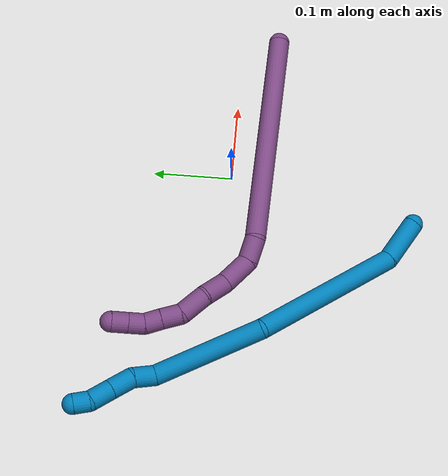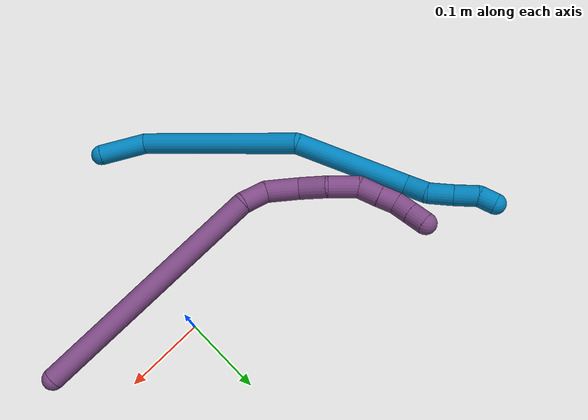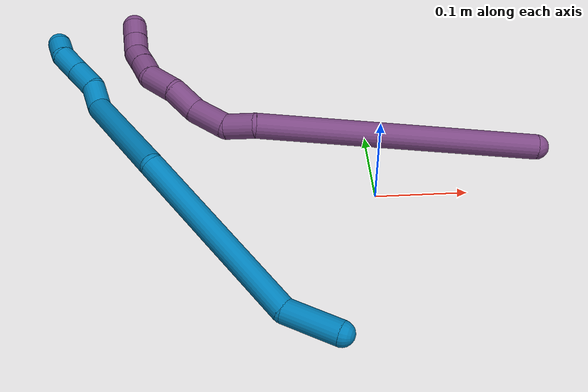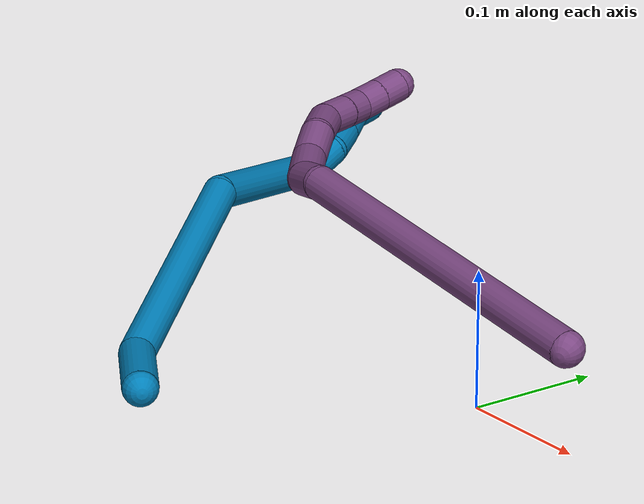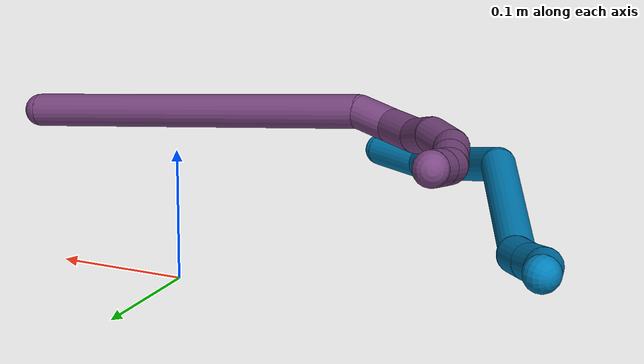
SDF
<sdf version="1.7">
 <world name="default">
  <model name="9">
   <static>0</static>
   <link name="9">
    <collision name="collision-cylinder-e_1_1_4">
     <pose>-0.002328 0.001335 -0.02846 -3.09473 -0.081517 2.09838</pose>
     <geometry><cylinder><radius>0.0125</radius><length>0.057173</length></cylinder></geometry>
     <surface>
      <friction><ode><mu>1.16</mu><mu2>1.16</mu2><slip1>0</slip1><slip2>0</slip2></ode></friction>
      <contact><ode><kp>1e+06</kp><kd>1</kd><max_vel>0</max_vel><min_depth>0.001</min_depth></ode></contact>
     </surface>
    </collision>
    <visual name="visual-cylinder-e_1_1_4">
     <pose>-0.002328 0.001335 -0.02846 -3.09473 -0.081517 2.09838</pose>
     <geometry><cylinder><radius>0.0125</radius><length>0.057173</length></cylinder></geometry>
     <material><ambient>0 0.490196 0.709804 1</ambient></material>
    </visual>
    <collision name="collision-cylinder-e_2_4_5">
     <pose>-0.042164 0.035231 -0.141903 -2.77569 -0.390936 1.63853</pose>
     <geometry><cylinder><radius>0.0125</radius><length>0.196866</length></cylinder></geometry>
     <surface>
      <friction><ode><mu>1.16</mu><mu2>1.16</mu2><slip1>0</slip1><slip2>0</slip2></ode></friction>
      <contact><ode><kp>1e+06</kp><kd>1</kd><max_vel>0</max_vel><min_depth>0.001</min_depth></ode></contact>
     </surface>
    </collision>
    <visual name="visual-cylinder-e_2_4_5">
     <pose>-0.042164 0.035231 -0.141903 -2.77569 -0.390936 1.63853</pose>
     <geometry><cylinder><radius>0.0125</radius><length>0.196866</length></cylinder></geometry>
     <material><ambient>0 0.490196 0.709804 1</ambient></material>
    </visual>
    <collision name="collision-cylinder-e_3_5_6">
     <pose>-0.08006 0.110308 -0.281617 -2.48116 -0.0056 0.016337</pose>
     <geometry><cylinder><radius>0.0125</radius><length>0.138613</length></cylinder></geometry>
     <surface>
      <friction><ode><mu>1.16</mu><mu2>1.16</mu2><slip1>0</slip1><slip2>0</slip2></ode></friction>
      <contact><ode><kp>1e+06</kp><kd>1</kd><max_vel>0</max_vel><min_depth>0.001</min_depth></ode></contact>
     </surface>
    </collision>
    <visual name="visual-cylinder-e_3_5_6">
     <pose>-0.08006 0.110308 -0.281617 -2.48116 -0.0056 0.016337</pose>
     <geometry><cylinder><radius>0.0125</radius><length>0.138613</length></cylinder></geometry>
     <material><ambient>0 0.490196 0.709804 1</ambient></material>
    </visual>
    <collision name="collision-cylinder-e_4_6_7">
     <pose>-0.087316 0.161517 -0.345304 -2.37108 -0.503039 1.12961</pose>
     <geometry><cylinder><radius>0.0125</radius><length>0.02849</length></cylinder></geometry>
     <surface>
      <friction><ode><mu>1.16</mu><mu2>1.16</mu2><slip1>0</slip1><slip2>0</slip2></ode></friction>
      <contact><ode><kp>1e+06</kp><kd>1</kd><max_vel>0</max_vel><min_depth>0.001</min_depth></ode></contact>
     </surface>
    </collision>
    <visual name="visual-cylinder-e_4_6_7">
     <pose>-0.087316 0.161517 -0.345304 -2.37108 -0.503039 1.12961</pose>
     <geometry><cylinder><radius>0.0125</radius><length>0.02849</length></cylinder></geometry>
     <material><ambient>0 0.490196 0.709804 1</ambient></material>
    </visual>
    <collision name="collision-cylinder-e_5_7_8">
     <pose>-0.09849 0.176034 -0.367404 -2.72448 -0.291055 1.21139</pose>
     <geometry><cylinder><radius>0.0125</radius><length>0.030017</length></cylinder></geometry>
     <surface>
      <friction><ode><mu>1.16</mu><mu2>1.16</mu2><slip1>0</slip1><slip2>0</slip2></ode></friction>
      <contact><ode><kp>1e+06</kp><kd>1</kd><max_vel>0</max_vel><min_depth>0.001</min_depth></ode></contact>
     </surface>
    </collision>
    <visual name="visual-cylinder-e_5_7_8">
     <pose>-0.09849 0.176034 -0.367404 -2.72448 -0.291055 1.21139</pose>
     <geometry><cylinder><radius>0.0125</radius><length>0.030017</length></cylinder></geometry>
     <material><ambient>0 0.490196 0.709804 1</ambient></material>
    </visual>
    <collision name="collision-cylinder-e_6_8_9">
     <pose>-0.10758 0.18687 -0.393052 -2.76039 -0.341239 1.45784</pose>
     <geometry><cylinder><radius>0.0125</radius><length>0.028587</length></cylinder></geometry>
     <surface>
      <friction><ode><mu>1.16</mu><mu2>1.16</mu2><slip1>0</slip1><slip2>0</slip2></ode></friction>
      <contact><ode><kp>1e+06</kp><kd>1</kd><max_vel>0</max_vel><min_depth>0.001</min_depth></ode></contact>
     </surface>
    </collision>
    <visual name="visual-cylinder-e_6_8_9">
     <pose>-0.10758 0.18687 -0.393052 -2.76039 -0.341239 1.45784</pose>
     <geometry><cylinder><radius>0.0125</radius><length>0.028587</length></cylinder></geometry>
     <material><ambient>0 0.490196 0.709804 1</ambient></material>
    </visual>
    <collision name="collision-cylinder-e_7_9_2">
     <pose>-0.115282 0.19891 -0.412234 -2.33068 -0.292311 0.660749</pose>
     <geometry><cylinder><radius>0.0125</radius><length>0.020254</length></cylinder></geometry>
     <surface>
      <friction><ode><mu>1.16</mu><mu2>1.16</mu2><slip1>0</slip1><slip2>0</slip2></ode></friction>
      <contact><ode><kp>1e+06</kp><kd>1</kd><max_vel>0</max_vel><min_depth>0.001</min_depth></ode></contact>
     </surface>
    </collision>
    <visual name="visual-cylinder-e_7_9_2">
     <pose>-0.115282 0.19891 -0.412234 -2.33068 -0.292311 0.660749</pose>
     <geometry><cylinder><radius>0.0125</radius><length>0.020254</length></cylinder></geometry>
     <material><ambient>0 0.490196 0.709804 1</ambient></material>
    </visual>
    <collision name="collision-sphere-2">
     <pose>-0.1182 0.20594 -0.418914 0 -0 0</pose>
     <geometry><sphere><radius>0.0125</radius></sphere></geometry>
     <surface>
      <friction><ode><mu>1.16</mu><mu2>1.16</mu2><slip1>0</slip1><slip2>0</slip2></ode></friction>
      <contact><ode><kp>1e+06</kp><kd>1</kd><max_vel>0</max_vel><min_depth>0.001</min_depth></ode></contact>
     </surface>
    </collision>
    <visual name="visual-sphere-2">
     <pose>-0.1182 0.20594 -0.418914 0 -0 0</pose>
     <geometry><sphere><radius>0.0125</radius></sphere></geometry>
     <material><ambient>0 0.490196 0.709804 1</ambient></material>
    </visual>
    <collision name="collision-sphere-9">
     <pose>-0.112364 0.191881 -0.405554 0 -0 0</pose>
     <geometry><sphere><radius>0.0125</radius></sphere></geometry>
     <surface>
      <friction><ode><mu>1.16</mu><mu2>1.16</mu2><slip1>0</slip1><slip2>0</slip2></ode></friction>
      <contact><ode><kp>1e+06</kp><kd>1</kd><max_vel>0</max_vel><min_depth>0.001</min_depth></ode></contact>
     </surface>
    </collision>
    <visual name="visual-sphere-9">
     <pose>-0.112364 0.191881 -0.405554 0 -0 0</pose>
     <geometry><sphere><radius>0.0125</radius></sphere></geometry>
     <material><ambient>0 0.490196 0.709804 1</ambient></material>
    </visual>
    <collision name="collision-sphere-4">
     <pose>-0.004655 0.00267 -0.056921 0 -0 0</pose>
     <geometry><sphere><radius>0.0125</radius></sphere></geometry>
     <surface>
      <friction><ode><mu>1.16</mu><mu2>1.16</mu2><slip1>0</slip1><slip2>0</slip2></ode></friction>
      <contact><ode><kp>1e+06</kp><kd>1</kd><max_vel>0</max_vel><min_depth>0.001</min_depth></ode></contact>
     </surface>
    </collision>
    <visual name="visual-sphere-4">
     <pose>-0.004655 0.00267 -0.056921 0 -0 0</pose>
     <geometry><sphere><radius>0.0125</radius></sphere></geometry>
     <material><ambient>0 0.490196 0.709804 1</ambient></material>
    </visual>
    <collision name="collision-sphere-1">
     <geometry><sphere><radius>0.0125</radius></sphere></geometry>
     <surface>
      <friction><ode><mu>1.16</mu><mu2>1.16</mu2><slip1>0</slip1><slip2>0</slip2></ode></friction>
      <contact><ode><kp>1e+06</kp><kd>1</kd><max_vel>0</max_vel><min_depth>0.001</min_depth></ode></contact>
     </surface>
    </collision>
    <visual name="visual-sphere-1">
     <geometry><sphere><radius>0.0125</radius></sphere></geometry>
     <material><ambient>0 0.490196 0.709804 1</ambient></material>
    </visual>
    <collision name="collision-sphere-8">
     <pose>-0.102797 0.181858 -0.380549 0 -0 0</pose>
     <geometry><sphere><radius>0.0125</radius></sphere></geometry>
     <surface>
      <friction><ode><mu>1.16</mu><mu2>1.16</mu2><slip1>0</slip1><slip2>0</slip2></ode></friction>
      <contact><ode><kp>1e+06</kp><kd>1</kd><max_vel>0</max_vel><min_depth>0.001</min_depth></ode></contact>
     </surface>
    </collision>
    <visual name="visual-sphere-8">
     <pose>-0.102797 0.181858 -0.380549 0 -0 0</pose>
     <geometry><sphere><radius>0.0125</radius></sphere></geometry>
     <material><ambient>0 0.490196 0.709804 1</ambient></material>
    </visual>
    <collision name="collision-sphere-5">
     <pose>-0.079672 0.067792 -0.226885 0 -0 0</pose>
     <geometry><sphere><radius>0.0125</radius></sphere></geometry>
     <surface>
      <friction><ode><mu>1.16</mu><mu2>1.16</mu2><slip1>0</slip1><slip2>0</slip2></ode></friction>
      <contact><ode><kp>1e+06</kp><kd>1</kd><max_vel>0</max_vel><min_depth>0.001</min_depth></ode></contact>
     </surface>
    </collision>
    <visual name="visual-sphere-5">
     <pose>-0.079672 0.067792 -0.226885 0 -0 0</pose>
     <geometry><sphere><radius>0.0125</radius></sphere></geometry>
     <material><ambient>0 0.490196 0.709804 1</ambient></material>
    </visual>
    <collision name="collision-sphere-6">
     <pose>-0.080448 0.152824 -0.336349 0 -0 0</pose>
     <geometry><sphere><radius>0.0125</radius></sphere></geometry>
     <surface>
      <friction><ode><mu>1.16</mu><mu2>1.16</mu2><slip1>0</slip1><slip2>0</slip2></ode></friction>
      <contact><ode><kp>1e+06</kp><kd>1</kd><max_vel>0</max_vel><min_depth>0.001</min_depth></ode></contact>
     </surface>
    </collision>
    <visual name="visual-sphere-6">
     <pose>-0.080448 0.152824 -0.336349 0 -0 0</pose>
     <geometry><sphere><radius>0.0125</radius></sphere></geometry>
     <material><ambient>0 0.490196 0.709804 1</ambient></material>
    </visual>
    <collision name="collision-sphere-7">
     <pose>-0.094183 0.170209 -0.35426 0 -0 0</pose>
     <geometry><sphere><radius>0.0125</radius></sphere></geometry>
     <surface>
      <friction><ode><mu>1.16</mu><mu2>1.16</mu2><slip1>0</slip1><slip2>0</slip2></ode></friction>
      <contact><ode><kp>1e+06</kp><kd>1</kd><max_vel>0</max_vel><min_depth>0.001</min_depth></ode></contact>
     </surface>
    </collision>
    <visual name="visual-sphere-7">
     <pose>-0.094183 0.170209 -0.35426 0 -0 0</pose>
     <geometry><sphere><radius>0.0125</radius></sphere></geometry>
     <material><ambient>0 0.490196 0.709804 1</ambient></material>
    </visual>
    <inertial>
     <pose>-0.060771 0.083117 -0.218101 0 -0 0</pose>
     <mass>0.5</mass>
     <inertia>
      <ixx>0.000794</ixx>
      <ixy>0</ixy>
      <ixz>0</ixz>
      <iyy>0.000594</iyy>
      <iyz>0</iyz>
      <izz>-0.000139</izz>
     </inertia>
    </inertial>
   </link>
   <pose>-0.06255 -0.231172 0.048203 -1.42354 1.35282 -1.8823</pose>
  </model>
  <model name="20">
   <static>0</static>
   <link name="20">
    <collision name="collision-cylinder-e_1_1_4">
     <pose>-0.1191 0.019818 0.071234 -0.271341 -1.01521 0.151566</pose>
     <geometry><cylinder><radius>0.0125</radius><length>0.28037</length></cylinder></geometry>
     <surface>
      <friction><ode><mu>1.16</mu><mu2>1.16</mu2><slip1>0</slip1><slip2>0</slip2></ode></friction>
      <contact><ode><kp>1e+06</kp><kd>1</kd><max_vel>0</max_vel><min_depth>0.001</min_depth></ode></contact>
     </surface>
    </collision>
    <visual name="visual-cylinder-e_1_1_4">
     <pose>-0.1191 0.019818 0.071234 -0.271341 -1.01521 0.151566</pose>
     <geometry><cylinder><radius>0.0125</radius><length>0.28037</length></cylinder></geometry>
     <material><ambient>0.478431 0.278431 0.509804 1</ambient></material>
    </visual>
    <collision name="collision-cylinder-e_2_4_5">
     <pose>-0.24807 0.046161 0.151546 -0.623314 -0.723268 0.242528</pose>
     <geometry><cylinder><radius>0.0125</radius><length>0.029828</length></cylinder></geometry>
     <surface>
      <friction><ode><mu>1.16</mu><mu2>1.16</mu2><slip1>0</slip1><slip2>0</slip2></ode></friction>
      <contact><ode><kp>1e+06</kp><kd>1</kd><max_vel>0</max_vel><min_depth>0.001</min_depth></ode></contact>
     </surface>
    </collision>
    <visual name="visual-cylinder-e_2_4_5">
     <pose>-0.24807 0.046161 0.151546 -0.623314 -0.723268 0.242528</pose>
     <geometry><cylinder><radius>0.0125</radius><length>0.029828</length></cylinder></geometry>
     <material><ambient>0.478431 0.278431 0.509804 1</ambient></material>
    </visual>
    <collision name="collision-cylinder-e_3_5_6">
     <pose>-0.264619 0.056382 0.178346 -0.2055 -0.353426 0.036823</pose>
     <geometry><cylinder><radius>0.0125</radius><length>0.038592</length></cylinder></geometry>
     <surface>
      <friction><ode><mu>1.16</mu><mu2>1.16</mu2><slip1>0</slip1><slip2>0</slip2></ode></friction>
      <contact><ode><kp>1e+06</kp><kd>1</kd><max_vel>0</max_vel><min_depth>0.001</min_depth></ode></contact>
     </surface>
    </collision>
    <visual name="visual-cylinder-e_3_5_6">
     <pose>-0.264619 0.056382 0.178346 -0.2055 -0.353426 0.036823</pose>
     <geometry><cylinder><radius>0.0125</radius><length>0.038592</length></cylinder></geometry>
     <material><ambient>0.478431 0.278431 0.509804 1</ambient></material>
    </visual>
    <collision name="collision-cylinder-e_4_6_7">
     <pose>-0.275525 0.059214 0.211314 0.056428 -0.270106 -0.007669</pose>
     <geometry><cylinder><radius>0.0125</radius><length>0.031688</length></cylinder></geometry>
     <surface>
      <friction><ode><mu>1.16</mu><mu2>1.16</mu2><slip1>0</slip1><slip2>0</slip2></ode></friction>
      <contact><ode><kp>1e+06</kp><kd>1</kd><max_vel>0</max_vel><min_depth>0.001</min_depth></ode></contact>
     </surface>
    </collision>
    <visual name="visual-cylinder-e_4_6_7">
     <pose>-0.275525 0.059214 0.211314 0.056428 -0.270106 -0.007669</pose>
     <geometry><cylinder><radius>0.0125</radius><length>0.031688</length></cylinder></geometry>
     <material><ambient>0.478431 0.278431 0.509804 1</ambient></material>
    </visual>
    <collision name="collision-cylinder-e_5_7_8">
     <pose>-0.284194 0.062281 0.242827 -0.236888 -0.259414 0.031042</pose>
     <geometry><cylinder><radius>0.0125</radius><length>0.034628</length></cylinder></geometry>
     <surface>
      <friction><ode><mu>1.16</mu><mu2>1.16</mu2><slip1>0</slip1><slip2>0</slip2></ode></friction>
      <contact><ode><kp>1e+06</kp><kd>1</kd><max_vel>0</max_vel><min_depth>0.001</min_depth></ode></contact>
     </surface>
    </collision>
    <visual name="visual-cylinder-e_5_7_8">
     <pose>-0.284194 0.062281 0.242827 -0.236888 -0.259414 0.031042</pose>
     <geometry><cylinder><radius>0.0125</radius><length>0.034628</length></cylinder></geometry>
     <material><ambient>0.478431 0.278431 0.509804 1</ambient></material>
    </visual>
    <collision name="collision-cylinder-e_6_8_9">
     <pose>-0.28644 0.068118 0.270913 -0.160257 0.181364 -0.014603</pose>
     <geometry><cylinder><radius>0.0125</radius><length>0.024345</length></cylinder></geometry>
     <surface>
      <friction><ode><mu>1.16</mu><mu2>1.16</mu2><slip1>0</slip1><slip2>0</slip2></ode></friction>
      <contact><ode><kp>1e+06</kp><kd>1</kd><max_vel>0</max_vel><min_depth>0.001</min_depth></ode></contact>
     </surface>
    </collision>
    <visual name="visual-cylinder-e_6_8_9">
     <pose>-0.28644 0.068118 0.270913 -0.160257 0.181364 -0.014603</pose>
     <geometry><cylinder><radius>0.0125</radius><length>0.024345</length></cylinder></geometry>
     <material><ambient>0.478431 0.278431 0.509804 1</ambient></material>
    </visual>
    <collision name="collision-cylinder-e_7_9_10">
     <pose>-0.282756 0.071819 0.292726 -0.177278 0.145586 -0.012961</pose>
     <geometry><cylinder><radius>0.0125</radius><length>0.020523</length></cylinder></geometry>
     <surface>
      <friction><ode><mu>1.16</mu><mu2>1.16</mu2><slip1>0</slip1><slip2>0</slip2></ode></friction>
      <contact><ode><kp>1e+06</kp><kd>1</kd><max_vel>0</max_vel><min_depth>0.001</min_depth></ode></contact>
     </surface>
    </collision>
    <visual name="visual-cylinder-e_7_9_10">
     <pose>-0.282756 0.071819 0.292726 -0.177278 0.145586 -0.012961</pose>
     <geometry><cylinder><radius>0.0125</radius><length>0.020523</length></cylinder></geometry>
     <material><ambient>0.478431 0.278431 0.509804 1</ambient></material>
    </visual>
    <collision name="collision-cylinder-e_8_10_11">
     <pose>-0.277476 0.072518 0.311919 0.11811 0.3885 0.023262</pose>
     <geometry><cylinder><radius>0.0125</radius><length>0.020018</length></cylinder></geometry>
     <surface>
      <friction><ode><mu>1.16</mu><mu2>1.16</mu2><slip1>0</slip1><slip2>0</slip2></ode></friction>
      <contact><ode><kp>1e+06</kp><kd>1</kd><max_vel>0</max_vel><min_depth>0.001</min_depth></ode></contact>
     </surface>
    </collision>
    <visual name="visual-cylinder-e_8_10_11">
     <pose>-0.277476 0.072518 0.311919 0.11811 0.3885 0.023262</pose>
     <geometry><cylinder><radius>0.0125</radius><length>0.020018</length></cylinder></geometry>
     <material><ambient>0.478431 0.278431 0.509804 1</ambient></material>
    </visual>
    <collision name="collision-cylinder-e_9_11_2">
     <pose>-0.269924 0.070249 0.330313 0.127346 0.385352 0.024877</pose>
     <geometry><cylinder><radius>0.0125</radius><length>0.020008</length></cylinder></geometry>
     <surface>
      <friction><ode><mu>1.16</mu><mu2>1.16</mu2><slip1>0</slip1><slip2>0</slip2></ode></friction>
      <contact><ode><kp>1e+06</kp><kd>1</kd><max_vel>0</max_vel><min_depth>0.001</min_depth></ode></contact>
     </surface>
    </collision>
    <visual name="visual-cylinder-e_9_11_2">
     <pose>-0.269924 0.070249 0.330313 0.127346 0.385352 0.024877</pose>
     <geometry><cylinder><radius>0.0125</radius><length>0.020008</length></cylinder></geometry>
     <material><ambient>0.478431 0.278431 0.509804 1</ambient></material>
    </visual>
    <collision name="collision-sphere-2">
     <pose>-0.266163 0.069072 0.339509 0 -0 0</pose>
     <geometry><sphere><radius>0.0125</radius></sphere></geometry>
     <surface>
      <friction><ode><mu>1.16</mu><mu2>1.16</mu2><slip1>0</slip1><slip2>0</slip2></ode></friction>
      <contact><ode><kp>1e+06</kp><kd>1</kd><max_vel>0</max_vel><min_depth>0.001</min_depth></ode></contact>
     </surface>
    </collision>
    <visual name="visual-sphere-2">
     <pose>-0.266163 0.069072 0.339509 0 -0 0</pose>
     <geometry><sphere><radius>0.0125</radius></sphere></geometry>
     <material><ambient>0.478431 0.278431 0.509804 1</ambient></material>
    </visual>
    <collision name="collision-sphere-11">
     <pose>-0.273684 0.071427 0.321118 0 -0 0</pose>
     <geometry><sphere><radius>0.0125</radius></sphere></geometry>
     <surface>
      <friction><ode><mu>1.16</mu><mu2>1.16</mu2><slip1>0</slip1><slip2>0</slip2></ode></friction>
      <contact><ode><kp>1e+06</kp><kd>1</kd><max_vel>0</max_vel><min_depth>0.001</min_depth></ode></contact>
     </surface>
    </collision>
    <visual name="visual-sphere-11">
     <pose>-0.273684 0.071427 0.321118 0 -0 0</pose>
     <geometry><sphere><radius>0.0125</radius></sphere></geometry>
     <material><ambient>0.478431 0.278431 0.509804 1</ambient></material>
    </visual>
    <collision name="collision-sphere-10">
     <pose>-0.281267 0.07361 0.30272 0 -0 0</pose>
     <geometry><sphere><radius>0.0125</radius></sphere></geometry>
     <surface>
      <friction><ode><mu>1.16</mu><mu2>1.16</mu2><slip1>0</slip1><slip2>0</slip2></ode></friction>
      <contact><ode><kp>1e+06</kp><kd>1</kd><max_vel>0</max_vel><min_depth>0.001</min_depth></ode></contact>
     </surface>
    </collision>
    <visual name="visual-sphere-10">
     <pose>-0.281267 0.07361 0.30272 0 -0 0</pose>
     <geometry><sphere><radius>0.0125</radius></sphere></geometry>
     <material><ambient>0.478431 0.278431 0.509804 1</ambient></material>
    </visual>
    <collision name="collision-sphere-9">
     <pose>-0.284245 0.070029 0.282733 0 -0 0</pose>
     <geometry><sphere><radius>0.0125</radius></sphere></geometry>
     <surface>
      <friction><ode><mu>1.16</mu><mu2>1.16</mu2><slip1>0</slip1><slip2>0</slip2></ode></friction>
      <contact><ode><kp>1e+06</kp><kd>1</kd><max_vel>0</max_vel><min_depth>0.001</min_depth></ode></contact>
     </surface>
    </collision>
    <visual name="visual-sphere-9">
     <pose>-0.284245 0.070029 0.282733 0 -0 0</pose>
     <geometry><sphere><radius>0.0125</radius></sphere></geometry>
     <material><ambient>0.478431 0.278431 0.509804 1</ambient></material>
    </visual>
    <collision name="collision-sphere-4">
     <pose>-0.238199 0.039635 0.142468 0 -0 0</pose>
     <geometry><sphere><radius>0.0125</radius></sphere></geometry>
     <surface>
      <friction><ode><mu>1.16</mu><mu2>1.16</mu2><slip1>0</slip1><slip2>0</slip2></ode></friction>
      <contact><ode><kp>1e+06</kp><kd>1</kd><max_vel>0</max_vel><min_depth>0.001</min_depth></ode></contact>
     </surface>
    </collision>
    <visual name="visual-sphere-4">
     <pose>-0.238199 0.039635 0.142468 0 -0 0</pose>
     <geometry><sphere><radius>0.0125</radius></sphere></geometry>
     <material><ambient>0.478431 0.278431 0.509804 1</ambient></material>
    </visual>
    <collision name="collision-sphere-1">
     <geometry><sphere><radius>0.0125</radius></sphere></geometry>
     <surface>
      <friction><ode><mu>1.16</mu><mu2>1.16</mu2><slip1>0</slip1><slip2>0</slip2></ode></friction>
      <contact><ode><kp>1e+06</kp><kd>1</kd><max_vel>0</max_vel><min_depth>0.001</min_depth></ode></contact>
     </surface>
    </collision>
    <visual name="visual-sphere-1">
     <geometry><sphere><radius>0.0125</radius></sphere></geometry>
     <material><ambient>0.478431 0.278431 0.509804 1</ambient></material>
    </visual>
    <collision name="collision-sphere-8">
     <pose>-0.288636 0.066208 0.259094 0 -0 0</pose>
     <geometry><sphere><radius>0.0125</radius></sphere></geometry>
     <surface>
      <friction><ode><mu>1.16</mu><mu2>1.16</mu2><slip1>0</slip1><slip2>0</slip2></ode></friction>
      <contact><ode><kp>1e+06</kp><kd>1</kd><max_vel>0</max_vel><min_depth>0.001</min_depth></ode></contact>
     </surface>
    </collision>
    <visual name="visual-sphere-8">
     <pose>-0.288636 0.066208 0.259094 0 -0 0</pose>
     <geometry><sphere><radius>0.0125</radius></sphere></geometry>
     <material><ambient>0.478431 0.278431 0.509804 1</ambient></material>
    </visual>
    <collision name="collision-sphere-5">
     <pose>-0.25794 0.052687 0.160624 0 -0 0</pose>
     <geometry><sphere><radius>0.0125</radius></sphere></geometry>
     <surface>
      <friction><ode><mu>1.16</mu><mu2>1.16</mu2><slip1>0</slip1><slip2>0</slip2></ode></friction>
      <contact><ode><kp>1e+06</kp><kd>1</kd><max_vel>0</max_vel><min_depth>0.001</min_depth></ode></contact>
     </surface>
    </collision>
    <visual name="visual-sphere-5">
     <pose>-0.25794 0.052687 0.160624 0 -0 0</pose>
     <geometry><sphere><radius>0.0125</radius></sphere></geometry>
     <material><ambient>0.478431 0.278431 0.509804 1</ambient></material>
    </visual>
    <collision name="collision-sphere-6">
     <pose>-0.271298 0.060076 0.196069 0 -0 0</pose>
     <geometry><sphere><radius>0.0125</radius></sphere></geometry>
     <surface>
      <friction><ode><mu>1.16</mu><mu2>1.16</mu2><slip1>0</slip1><slip2>0</slip2></ode></friction>
      <contact><ode><kp>1e+06</kp><kd>1</kd><max_vel>0</max_vel><min_depth>0.001</min_depth></ode></contact>
     </surface>
    </collision>
    <visual name="visual-sphere-6">
     <pose>-0.271298 0.060076 0.196069 0 -0 0</pose>
     <geometry><sphere><radius>0.0125</radius></sphere></geometry>
     <material><ambient>0.478431 0.278431 0.509804 1</ambient></material>
    </visual>
    <collision name="collision-sphere-7">
     <pose>-0.279753 0.058353 0.226559 0 -0 0</pose>
     <geometry><sphere><radius>0.0125</radius></sphere></geometry>
     <surface>
      <friction><ode><mu>1.16</mu><mu2>1.16</mu2><slip1>0</slip1><slip2>0</slip2></ode></friction>
      <contact><ode><kp>1e+06</kp><kd>1</kd><max_vel>0</max_vel><min_depth>0.001</min_depth></ode></contact>
     </surface>
    </collision>
    <visual name="visual-sphere-7">
     <pose>-0.279753 0.058353 0.226559 0 -0 0</pose>
     <geometry><sphere><radius>0.0125</radius></sphere></geometry>
     <material><ambient>0.478431 0.278431 0.509804 1</ambient></material>
    </visual>
    <inertial>
     <pose>-0.186614 0.038263 0.143872 0 -0 0</pose>
     <mass>0.5</mass>
     <inertia>
      <ixx>0.001114</ixx>
      <ixy>0</ixy>
      <ixz>0</ixz>
      <iyy>0.002001</iyy>
      <iyz>0</iyz>
      <izz>0.001336</izz>
     </inertia>
    </inertial>
   </link>
   <pose>0.148693 -0.048304 0.101568 -1.36924 0.184986 0.527404</pose>
  </model>
 </world>
</sdf>
